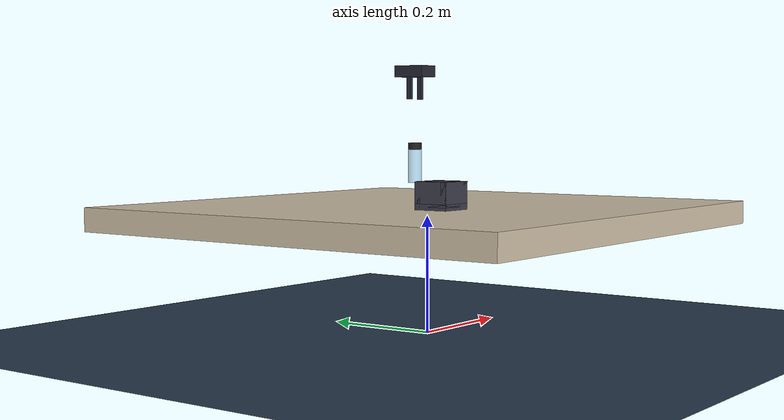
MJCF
<mujoco model="cwlab_pilot">
  <compiler angle="radian" autolimits="true"/>
  <option timestep="0.002" gravity="0 0 -9.81" integrator="implicitfast"/>

  <visual>
    <global offwidth="1280" offheight="1280"/>
    <headlight diffuse="0.6 0.6 0.6" ambient="0.35 0.35 0.35" specular="0.1 0.1 0.1"/>
    <quality shadowsize="2048"/>
  </visual>

  <asset>
    <texture type="skybox" builtin="gradient" rgb1="0.3 0.45 0.6" rgb2="0.05 0.08 0.12"
             width="512" height="3072"/>
    <texture name="grid" type="2d" builtin="checker" mark="edge"
             rgb1="0.2 0.28 0.36" rgb2="0.12 0.18 0.24" markrgb="0.75 0.75 0.75"
             width="300" height="300"/>
    <material name="grid" texture="grid" texuniform="true" texrepeat="6 6" reflectance="0.15"/>
    <material name="table" rgba="0.82 0.76 0.66 1"/>
    <material name="vial_glass" rgba="0.55 0.78 0.9 0.55"/>
    <material name="vial_cap" rgba="0.12 0.12 0.14 1"/>
    <material name="holder" rgba="0.24 0.24 0.3 1"/>
    <material name="gripper" rgba="0.15 0.15 0.2 1"/>
  </asset>

  <worldbody>
    <light name="key" pos="0.3 -0.3 1.2" dir="-0.3 0.3 -1" diffuse="0.7 0.7 0.7"/>

    <geom name="floor" type="plane" size="0 0 0.05" material="grid"/>

    <!-- table top surface at z = 0.22 -->
    <body name="table" pos="0 0 0.2">
      <geom name="table_top" type="box" size="0.4 0.4 0.02" material="table"/>
    </body>

    <!-- fixed holder: a square well, inner opening ~0.04 m across (vial dia 0.024 m) -->
    <body name="holder" pos="-0.1 -0.1 0.22">
      <geom name="holder_base" type="box" size="0.03 0.03 0.005" pos="0 0 0.005" material="holder"/>
      <geom name="holder_wx" type="box" size="0.005 0.03 0.02" pos="0.025 0 0.025" material="holder"/>
      <geom name="holder_nx" type="box" size="0.005 0.03 0.02" pos="-0.025 0 0.025" material="holder"/>
      <geom name="holder_wy" type="box" size="0.03 0.005 0.02" pos="0 0.025 0.025" material="holder"/>
      <geom name="holder_ny" type="box" size="0.03 0.005 0.02" pos="0 -0.025 0.025" material="holder"/>
    </body>

    <!-- vial: the only dynamic object, starts above the table and settles -->
    <body name="vial" pos="0.1 0.1 0.28">
      <freejoint name="vial_free"/>
      <geom name="vial_body" type="cylinder" size="0.012 0.03" material="vial_glass" mass="0.02"/>
      <geom name="vial_cap" type="cylinder" size="0.012 0.006" pos="0 0 0.036" material="vial_cap" mass="0.005"/>
    </body>

    <!-- end-effector proxy: kinematic mocap body with a wrist camera looking down -->
    <body name="ee" mocap="true" pos="0.1 0.1 0.45">
      <geom name="ee_palm" type="box" size="0.02 0.03 0.01" material="gripper"/>
      <geom name="ee_finger_l" type="box" size="0.004 0.004 0.02" pos="0.016 0 -0.03" material="gripper"/>
      <geom name="ee_finger_r" type="box" size="0.004 0.004 0.02" pos="-0.016 0 -0.03" material="gripper"/>
      <camera name="wrist_cam" pos="0 0 0.0" fovy="60"/>
    </body>

    <!-- fixed overview camera aimed at the workspace -->
    <camera name="scene_cam" pos="0.55 -0.55 0.7" mode="targetbody" target="table"/>
  </worldbody>
</mujoco>
